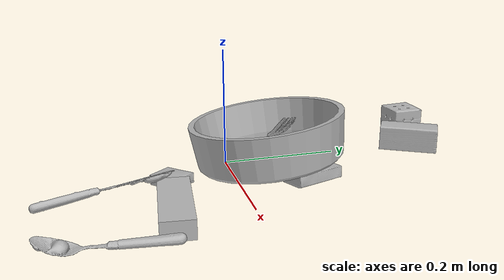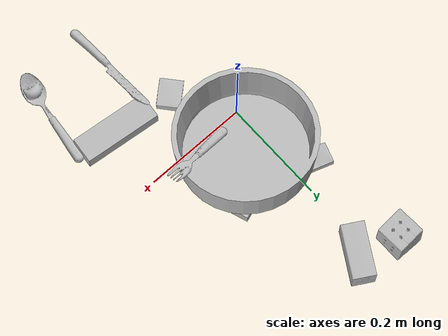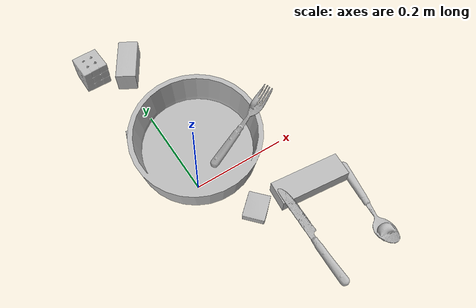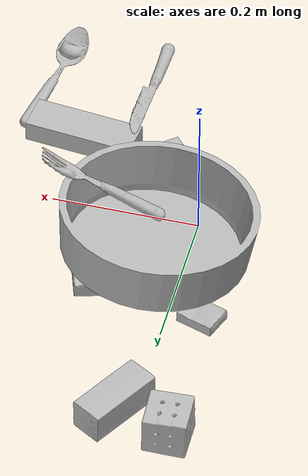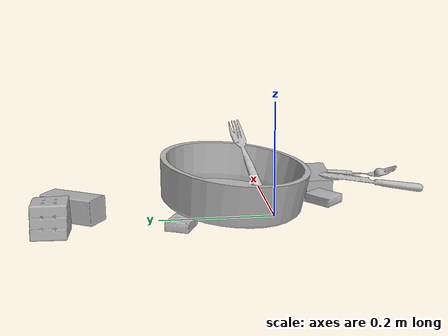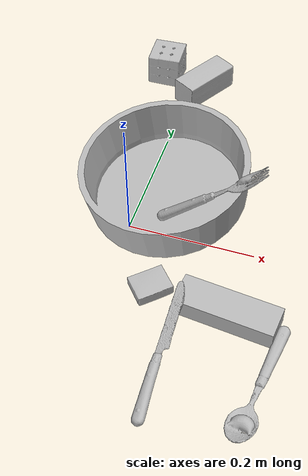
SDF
<sdf version="1.4">
  <world name="default">
    <light name="light1" type="point">
      <pose>0 0 1 0 0 0</pose>
      <diffuse>3 3 3 1</diffuse>
      <specular>3 3 3 1</specular>
    </light>
    <light name="light2" type="point">
      <pose>0 0.5 2 0 0 0</pose>
      <diffuse>1 1 1 1</diffuse>
      <specular>1 1 1 1</specular>
    </light>
    <light name="light3" type="point">
      <pose>0 0.5 2 0 0 0</pose>
      <diffuse>3 3 3 1</diffuse>
      <specular>3 3 3 1</specular>
    </light>
    <scene>
      <ambient>0.7 0.7 0.7</ambient>
    </scene>
    <model name="box11">
      <link name="link_box11">
        <collision name="default">
          <geometry>
            <mesh>
              <uri>model://cracker_box/collision_meshes/collision.obj</uri>
              <scale>0.25 0.25 0.25</scale>
            </mesh>
          </geometry>
          <surface>
            <friction>
              <ode>
                <mu>0.5</mu>
                <mu2>0.5</mu2>
              </ode>
            </friction>
          <contact>
        <ode>
            <max_vel>0</max_vel>
            <min_depth>0.0001</min_depth>
            <kp>1e8</kp>
        </ode>
    </contact></surface>
        </collision>
        <visual name="default">
          <geometry>
            <mesh>
              <uri>model://cracker_box/visual_meshes/visual.dae</uri>
              <scale>0.25 0.25 0.25</scale>
            </mesh>
          </geometry>
        </visual>
        <inertial>
          <mass>0.04448898881673813</mass>
          <pose>0.00023660270380787551 6.358561950037256e-05 -0.000425738311605528 -0.00031620780372907927 -0.011106488668730609 0.002546795468482302</pose>
          <inertia>
            <ixx>7.0725087e-06</ixx>
            <iyy>1.1678099e-05</iyy>
            <izz>1.666572e-05</izz>
            <ixy>0</ixy>
            <ixz>0</ixz>
            <iyz>0</iyz>
          </inertia>
        </inertial>
      </link>
      <pose>-0.045558396726846695 0.16248469054698944 0.009313632734119892 -0.027952227827397504 -0.007041306981634791 2.800063945502323</pose>
    </model>
    <model name="box12">
      <link name="link_box12">
        <collision name="default">
          <geometry>
            <mesh>
              <uri>model://wood_block/collision_meshes/collision.obj</uri>
              <scale>0.5 0.5 0.5</scale>
            </mesh>
          </geometry>
          <surface>
            <friction>
              <ode>
                <mu>0.5</mu>
                <mu2>0.5</mu2>
              </ode>
            </friction>
          <contact>
        <ode>
            <max_vel>0</max_vel>
            <min_depth>0.0001</min_depth>
            <kp>1e8</kp>
        </ode>
    </contact></surface>
        </collision>
        <visual name="default">
          <geometry>
            <mesh>
              <uri>model://wood_block/visual_meshes/visual.dae</uri>
              <scale>0.5 0.5 0.5</scale>
            </mesh>
          </geometry>
        </visual>
        <inertial>
          <mass>0.30308207869529724</mass>
          <pose>-2.906657982748584e-06 -0.000285404734313488 0.00013204291462898254 -0.05220975528484064 -0.0051926956083073895 -0.006861380255216688</pose>
          <inertia>
            <ixx>0.00010139242</ixx>
            <iyy>0.00032029866</iyy>
            <izz>0.0003191006</izz>
            <ixy>0</ixy>
            <ixz>0</ixz>
            <iyz>0</iyz>
          </inertia>
        </inertial>
      </link>
      <pose>0.02286427654325962 0.3446914255619049 0.022629259154200554 -0.005208385979461211 0.005718730723875016 1.0421193300102178</pose>
    </model>
    <model name="box13">
      <link name="link_box13">
        <collision name="default">
          <geometry>
            <mesh>
              <uri>model://pudding_box/collision_meshes/collision.obj</uri>
              <scale>0.5 0.5 0.5</scale>
            </mesh>
          </geometry>
          <surface>
            <friction>
              <ode>
                <mu>0.5</mu>
                <mu2>0.5</mu2>
              </ode>
            </friction>
          <contact>
        <ode>
            <max_vel>0</max_vel>
            <min_depth>0.0001</min_depth>
            <kp>1e8</kp>
        </ode>
    </contact></surface>
        </collision>
        <visual name="default">
          <geometry>
            <mesh>
              <uri>model://pudding_box/visual_meshes/visual.dae</uri>
              <scale>0.5 0.5 0.5</scale>
            </mesh>
          </geometry>
        </visual>
        <inertial>
          <mass>0.06630203872919083</mass>
          <pose>0.00024474109522998333 0.00040339428232982755 -0.00025944141088984907 0.0052131027026664865 -0.006603797821229493 0.02007983447369903</pose>
          <inertia>
            <ixx>1.873776e-05</ixx>
            <iyy>1.2606899e-05</iyy>
            <izz>2.7671198e-05</izz>
            <ixy>0</ixy>
            <ixz>0</ixz>
            <iyz>0</iyz>
          </inertia>
        </inertial>
      </link>
      <pose>0.06931144744157791 -0.10382211953401566 0.00986290443688631 0.0223485555901554 -0.011391722778486338 -0.8540630750620946</pose>
    </model>
    <model name="box21">
      <link name="link_box21">
        <collision name="default">
          <geometry>
            <mesh>
              <uri>model://sugar_box/collision_meshes/collision.obj</uri>
              <scale>0.5 0.5 0.5</scale>
            </mesh>
          </geometry>
          <surface>
            <friction>
              <ode>
                <mu>0.5</mu>
                <mu2>0.5</mu2>
              </ode>
            </friction>
          <contact>
        <ode>
            <max_vel>0</max_vel>
            <min_depth>0.0001</min_depth>
            <kp>1e8</kp>
        </ode>
    </contact></surface>
        </collision>
        <visual name="default">
          <geometry>
            <mesh>
              <uri>model://sugar_box/visual_meshes/visual.dae</uri>
              <scale>0.5 0.5 0.5</scale>
            </mesh>
          </geometry>
        </visual>
        <inertial>
          <mass>0.09398066252470016</mass>
          <pose>0.0005171863595023751 1.924554817378521e-05 -0.00018182402709499002 -0.00040462650409139634 0.0010506636387973133 0.002615378555960767</pose>
          <inertia>
            <ixx>1.9576108e-05</ixx>
            <iyy>6.3274e-05</iyy>
            <izz>7.574653e-05</izz>
            <ixy>0</ixy>
            <ixz>0</ixz>
            <iyz>0</iyz>
          </inertia>
        </inertial>
      </link>
      <pose>0.11803542822599411 0.11846087127923965 0.011831456795334816 0.06530081831321881 -0.009846651110426343 -1.2334714635737762</pose>
    </model>
    <model name="box22">
      <link name="link_box22">
        <collision name="default">
          <geometry>
            <mesh>
              <uri>model://jenga/collision_meshes/collision.obj</uri>
              <scale>1.0 1.0 1.0</scale>
            </mesh>
          </geometry>
          <surface>
            <friction>
              <ode>
                <mu>0.5</mu>
                <mu2>0.5</mu2>
              </ode>
            </friction>
          <contact>
        <ode>
            <max_vel>0</max_vel>
            <min_depth>0.0001</min_depth>
            <kp>1e8</kp>
        </ode>
    </contact></surface>
        </collision>
        <visual name="default">
          <geometry>
            <mesh>
              <uri>model://jenga/visual_meshes/visual.dae</uri>
              <scale>1.0 1.0 1.0</scale>
            </mesh>
          </geometry>
        </visual>
        <inertial>
          <mass>0.2620435655117035</mass>
          <pose>-2.5028555228345795e-07 -0.0001025000965455547 -4.092339804628864e-05 0.0 -7.342154049184251e-07 0.0</pose>
          <inertia>
            <ixx>7.251381e-05</ixx>
            <iyy>0.0004913516</iyy>
            <izz>0.00052455964</izz>
            <ixy>0</ixy>
            <ixz>0</ixz>
            <iyz>0</iyz>
          </inertia>
        </inertial>
      </link>
      <pose>0.18842735886573792 -0.11611799895763397 0.015000001527369022 -6.783253302406592e-08 -1.116136313383072e-07 3.033788882366346</pose>
    </model>
    <model name="box23">
      <link name="link_box23">
        <collision name="default">
          <geometry>
            <mesh>
              <uri>model://rubiks_cube/collision_meshes/collision.obj</uri>
              <scale>1.0 1.0 1.0</scale>
            </mesh>
          </geometry>
          <surface>
            <friction>
              <ode>
                <mu>0.5</mu>
                <mu2>0.5</mu2>
              </ode>
            </friction>
          <contact>
        <ode>
            <max_vel>0</max_vel>
            <min_depth>0.0001</min_depth>
            <kp>1e8</kp>
        </ode>
    </contact></surface>
        </collision>
        <visual name="default">
          <geometry>
            <mesh>
              <uri>model://rubiks_cube/visual_meshes/visual.dae</uri>
              <scale>1.0 1.0 1.0</scale>
            </mesh>
          </geometry>
        </visual>
        <inertial>
          <mass>0.1897622048854828</mass>
          <pose>2.6721043468569405e-05 5.256967051536776e-05 -7.264316082000732e-06 -0.054673156626660294 -0.09814014504853939 -0.034453657529750985</pose>
          <inertia>
            <ixx>0.00010485636</ixx>
            <iyy>0.00010436737</iyy>
            <izz>0.000105725274</izz>
            <ixy>0</ixy>
            <ixz>0</ixz>
            <iyz>0</iyz>
          </inertia>
        </inertial>
      </link>
      <pose>-0.05397564172744751 0.3695882558822632 0.028678948059678078 -4.055606460115908e-06 -1.7625679520864502e-06 0.04411360652378877</pose>
    </model>
    <model name="plate1">
      <link name="link_plate1">
        <collision name="default">
          <geometry>
            <mesh>
              <uri>model://pan_tefal/collision_meshes/collision.obj</uri>
              <scale>1.0 1.0 1.0</scale>
            </mesh>
          </geometry>
          <surface>
            <friction>
              <ode>
                <mu>0.5</mu>
                <mu2>0.5</mu2>
              </ode>
            </friction>
          <contact>
        <ode>
            <max_vel>0</max_vel>
            <min_depth>0.0001</min_depth>
            <kp>1e8</kp>
        </ode>
    </contact></surface>
        </collision>
        <visual name="default">
          <geometry>
            <mesh>
              <uri>model://pan_tefal/visual_meshes/visual.dae</uri>
              <scale>1.0 1.0 1.0</scale>
            </mesh>
          </geometry>
        </visual>
        <inertial>
          <mass>0.8768928050994873</mass>
          <pose>-0.00018002584693022072 3.279091833974235e-05 -0.008514934219419956 0.0008190272128915226 -0.0003301349770144462 -0.3318573305948388</pose>
          <inertia>
            <ixx>0.0060531492</ixx>
            <iyy>0.006092174</iyy>
            <izz>0.011142679</izz>
            <ixy>0</ixy>
            <ixz>0</ixz>
            <iyz>0</iyz>
          </inertia>
        </inertial>
      </link>
      <pose>0.039167359471321106 0.06721892952919006 0.05317087098956108 -0.005042253025084778 -0.12926863729206164 1.0128320715528076</pose>
    </model>
    <model name="silverware1">
      <link name="link_silverware1">
        <collision name="default">
          <geometry>
            <mesh>
              <uri>model://spoon/collision_meshes/collision.obj</uri>
              <scale>1.0 1.0 1.0</scale>
            </mesh>
          </geometry>
          <surface>
            <friction>
              <ode>
                <mu>0.5</mu>
                <mu2>0.5</mu2>
              </ode>
            </friction>
          <contact>
        <ode>
            <max_vel>0</max_vel>
            <min_depth>0.0001</min_depth>
            <kp>1e8</kp>
        </ode>
    </contact></surface>
        </collision>
        <visual name="default">
          <geometry>
            <mesh>
              <uri>model://spoon/visual_meshes/visual.dae</uri>
              <scale>1.0 1.0 1.0</scale>
            </mesh>
          </geometry>
        </visual>
        <inertial>
          <mass>0.030811671167612076</mass>
          <pose>-0.005526314955204725 -0.0016034170985221863 -0.0007271655485965312 0.03521832474385929 -0.03906585488360169 0.0061506134218646934</pose>
          <inertia>
            <ixx>1.713795e-06</ixx>
            <iyy>0.000117237374</iyy>
            <izz>0.00011808256</izz>
            <ixy>0</ixy>
            <ixz>0</ixz>
            <iyz>0</iyz>
          </inertia>
        </inertial>
      </link>
      <pose>0.26019904017448425 -0.2127363234758377 0.00838526338338852 0.006728929266225548 0.026892980176020015 -1.7195569299344868</pose>
    </model>
    <model name="silverware2">
      <link name="link_silverware2">
        <collision name="default">
          <geometry>
            <mesh>
              <uri>model://fork/collision_meshes/collision.obj</uri>
              <scale>1.0 1.0 1.0</scale>
            </mesh>
          </geometry>
          <surface>
            <friction>
              <ode>
                <mu>0.5</mu>
                <mu2>0.5</mu2>
              </ode>
            </friction>
          <contact>
        <ode>
            <max_vel>0</max_vel>
            <min_depth>0.0001</min_depth>
            <kp>1e8</kp>
        </ode>
    </contact></surface>
        </collision>
        <visual name="default">
          <geometry>
            <mesh>
              <uri>model://fork/visual_meshes/visual.dae</uri>
              <scale>1.0 1.0 1.0</scale>
            </mesh>
          </geometry>
        </visual>
        <inertial>
          <mass>0.016358599066734314</mass>
          <pose>-0.029570044949650764 0.00046588238910771906 0.0003218862693756819 -0.013550710307666105 -0.010977838412833367 0.014453905587424366</pose>
          <inertia>
            <ixx>5.7346136e-07</ixx>
            <iyy>4.270759e-05</iyy>
            <izz>4.29641e-05</izz>
            <ixy>0</ixy>
            <ixz>0</ixz>
            <iyz>0</iyz>
          </inertia>
        </inertial>
      </link>
      <pose>0.12238095700740814 0.03251761570572853 0.07653092592954636 -0.014384334102472505 -0.5910469155326076 0.21608986258868965</pose>
    </model>
    <model name="silverware3">
      <link name="link_silverware3">
        <collision name="default">
          <geometry>
            <mesh>
              <uri>model://knife/collision_meshes/collision.obj</uri>
              <scale>1.0 1.0 1.0</scale>
            </mesh>
          </geometry>
          <surface>
            <friction>
              <ode>
                <mu>0.5</mu>
                <mu2>0.5</mu2>
              </ode>
            </friction>
          <contact>
        <ode>
            <max_vel>0</max_vel>
            <min_depth>0.0001</min_depth>
            <kp>1e8</kp>
        </ode>
    </contact></surface>
        </collision>
        <visual name="default">
          <geometry>
            <mesh>
              <uri>model://knife/visual_meshes/visual.dae</uri>
              <scale>1.0 1.0 1.0</scale>
            </mesh>
          </geometry>
        </visual>
        <inertial>
          <mass>0.02715744450688362</mass>
          <pose>-0.023785259574651718 0.0015275124460458755 5.062024501967244e-05 0.07304743927496513 0.01724841757037888 -0.007409820832494391</pose>
          <inertia>
            <ixx>7.708383e-07</ixx>
            <iyy>0.00010433449</iyy>
            <izz>0.00010458276</izz>
            <ixy>0</ixy>
            <ixz>0</ixz>
            <iyz>0</iyz>
          </inertia>
        </inertial>
      </link>
      <pose>0.12099622935056686 -0.21169957518577576 0.024733249098062515 -0.3813628149806173 -0.17209664730272817 1.5770174867161395</pose>
    </model>
  <physics type="ode">
      <max_contacts>50</max_contacts>
      <ode>
        <solver>
          <type>quick</type>
          <iters>75</iters>
        </solver>
        <constraints>
          <contact_max_correcting_vel>0</contact_max_correcting_vel>
          <contact_surface_layer>0</contact_surface_layer>
        </constraints>
      </ode>
    </physics></world>
</sdf>
